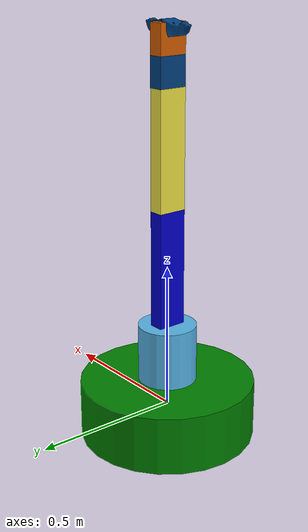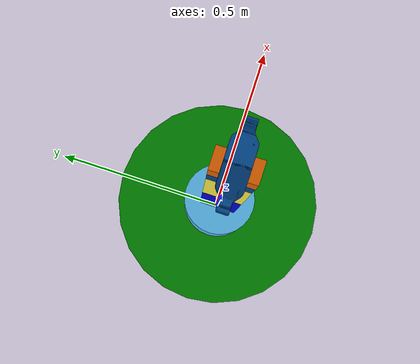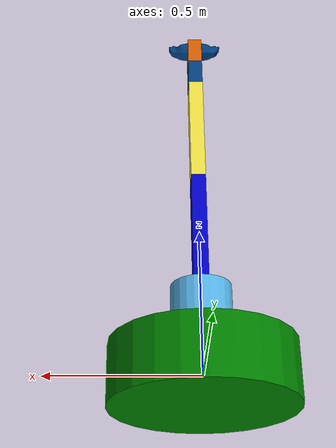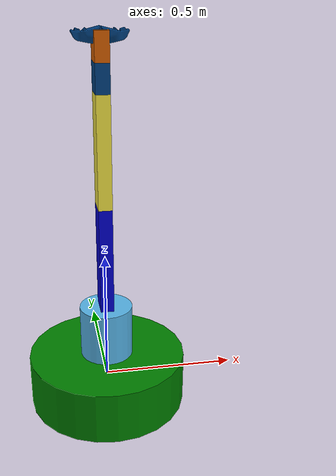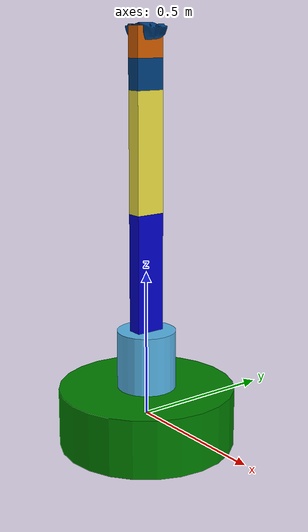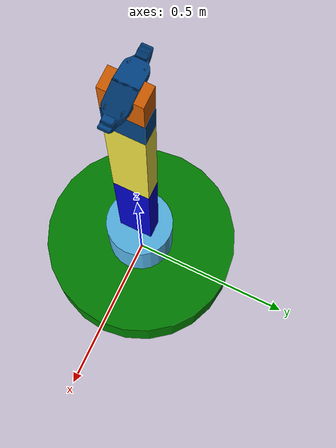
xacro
<?xml version="1.0"?>
	<robot name="lynxmotion">

	<material name="blue">
		<color rgba="0 0 0.8 1"/>
	</material>
	<material name="green">
		<color rgba="0 0.5 0 1"/>
	</material>

	<material name="light_blue">
		<color rgba="0 0.25 0.5 1"/>
	</material>

	<link name="base_link">
		<visual>
			<geometry>
				<cylinder length="0.2" radius="0.3"/>
			</geometry>
			<material name="green"/>
		</visual>
	</link>

	<link name="base_rotate">
		<visual>
			<geometry>
				<cylinder length="0.2" radius="0.1"/>
			</geometry>
			<origin rpy="0 0 0" xyz="0 0 0.1"/>
		</visual>
	</link>

	<link name="bottom_arm">
		<visual>
			<geometry>
				<box size="0.4 0.1 0.05"/>
			</geometry>
			<material name="blue"/>
			<origin rpy="0 1.57075 0" xyz="0 0 0.2"/>
		</visual>
	</link>

	<link name="top_arm">
		<visual>
			<geometry>
				<box size="0.4 0.1 0.05"/>
			</geometry>
			<origin rpy="0 1.57075 0" xyz="0 0 0.2"/>
		</visual>
	</link>

	<link name="fore_arm">
		<visual>
			<geometry>
				<box size="0.1 0.1 0.05"/>
			</geometry>
			<material name="light_blue"/>
			<origin rpy="0 1.57075 0" xyz="0 0 0.05"/>
		</visual>
	</link>

	<link name="wrist">
		<visual>
			<geometry>
				<box size="0.1 0.1 0.05"/>
			</geometry>
			<origin rpy="0 -1.57075 0" xyz="0 0 0.05"/>
		</visual>
	</link>

	<link name="right_gripper">
		<visual>
			<origin rpy="-1.57075 0 0" xyz="0 0 0"/>
			<geometry>
				<mesh filename="package://urdf_tutorial/meshes/l_finger.dae"/>
			</geometry>
			<material name="light_blue"/>
		</visual>
	</link>

	<link name="left_gripper">
		<visual>
			<origin rpy="-1.57075 0 3.1415" xyz="0 0 0"/>
			<geometry>
				<mesh filename="package://urdf_tutorial/meshes/l_finger.dae"/>
			</geometry>
			<material name="light_blue"/>
		</visual>
	</link>

	<joint name="left_gripper_joint" type="revolute">
		<axis xyz="0 1 0"/>
		<limit effort="1000.0" lower="0" upper="1.57075" velocity="0.5"/>
		<origin rpy="0 0 0" xyz="0 0 0.1"/>
		<parent link="wrist"/>
		<child link="left_gripper"/>
	</joint>

	<joint name="right_gripper_joint" type="revolute">
		<axis xyz="0 1 0"/>
		<limit effort="1000.0" lower="-1.57075" upper="0" velocity="0.5"/>
		<origin rpy="0 0 0" xyz="0 0 0.1"/>
		<parent link="wrist"/>
		<child link="right_gripper"/>
	</joint>

	<joint name="base_block_to_base_link" type="revolute">
		<axis xyz="0 0 1"/>
		<limit effort="1000.0" lower="-1.548" upper="1.548" velocity="0.5"/>
		<origin xyz="0 0 0.1"/>
		<parent link="base_link"/>
		<child link="base_rotate"/>
	</joint>

	<joint name="base_to_bottom_arm" type="revolute">
		<axis xyz="0 1 0"/>
		<limit effort="1000.0" lower="-1.548" upper="1.548" velocity="0.5"/>
		<origin xyz="0 0 0.2"/>
		<parent link="base_rotate"/>
		<child link="bottom_arm"/>
	</joint>

	<joint name="bottom_to_top_arm" type="revolute">
		<axis xyz="0 1 0"/>
		<limit effort="1000.0" lower="-1.548" upper="1.548" velocity="0.5"/>
		<origin xyz="0 0 0.4"/>
		<parent link="bottom_arm"/>
		<child link="top_arm"/>
	</joint>

	<joint name="top_to_fore_arm" type="revolute">
		<axis xyz="0 1 0"/>
		<limit effort="1000.0" lower="-1.548" upper="1.548" velocity="0.5"/>
		<origin xyz="0 0 0.4"/>
		<parent link="top_arm"/>
		<child link="fore_arm"/>
	</joint>

	<joint name="wrist_rotate" type="revolute">
		<axis xyz="0 0 1"/>
		<limit effort="1000.0" lower="-1.548" upper="1.548" velocity="0.5"/>
		<origin xyz="0 0 0.1"/>
		<parent link="fore_arm"/>
		<child link="wrist"/>
	</joint>

</robot>
